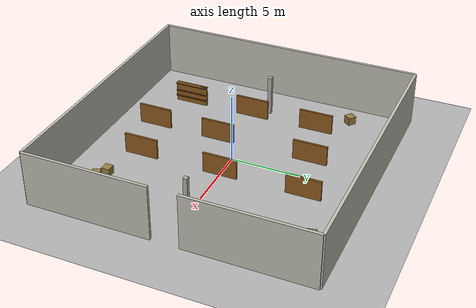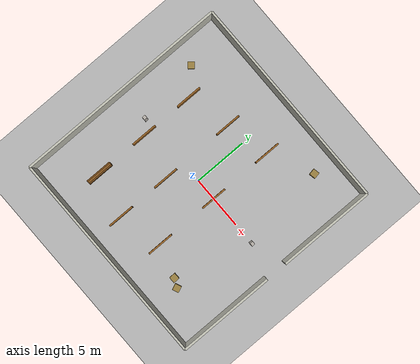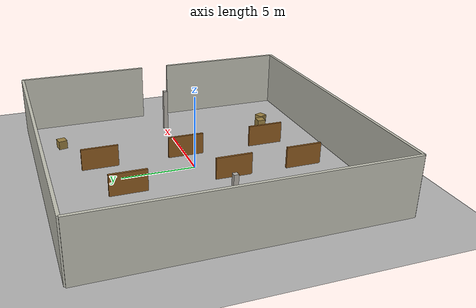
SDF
<?xml version="1.0" ?>
<sdf version="1.9">
<world name="warehouse">

  <physics name="1ms" type="ignored">
    <max_step_size>0.001</max_step_size>
    <real_time_factor>1.0</real_time_factor>
  </physics>

  <plugin filename="gz-sim-physics-system"
    name="gz::sim::systems::Physics"/>
  <plugin filename="gz-sim-user-commands-system"
    name="gz::sim::systems::UserCommands"/>
  <plugin filename="gz-sim-scene-broadcaster-system"
    name="gz::sim::systems::SceneBroadcaster"/>
  <plugin filename="gz-sim-contact-system"
    name="gz::sim::systems::Contact"/>
  <plugin filename="gz-sim-sensors-system"
    name="gz::sim::systems::Sensors">
    <render_engine>ogre2</render_engine>
  </plugin>

  <!-- ===== LIGHTING ===== -->
  <!-- Main overhead sun (no roof, so directional light works well) -->
  <light name="sun" type="directional">
    <cast_shadows>true</cast_shadows>
    <pose>0 0 20 0 0 0</pose>
    <diffuse>0.9 0.9 0.9 1</diffuse>
    <specular>0.3 0.3 0.3 1</specular>
    <direction>-0.3 0.1 -0.9</direction>
    <attenuation>
      <range>1000</range>
      <constant>0.9</constant>
      <linear>0.01</linear>
      <quadratic>0.001</quadratic>
    </attenuation>
  </light>

  <!-- Fill light to reduce harsh shadows -->
  <light name="fill_light" type="directional">
    <cast_shadows>false</cast_shadows>
    <pose>0 0 10 0 0 0</pose>
    <diffuse>0.4 0.4 0.5 1</diffuse>
    <specular>0.1 0.1 0.1 1</specular>
    <direction>0.5 -0.2 -0.8</direction>
  </light>

  <!-- ===== GROUND PLANE ===== -->
  <model name="ground_plane">
    <static>true</static>
    <link name="link">
      <collision name="collision">
        <geometry>
          <plane>
            <normal>0 0 1</normal>
            <size>100 100</size>
          </plane>
        </geometry>
        <surface>
          <friction>
            <ode><mu>1</mu><mu2>1</mu2></ode>
          </friction>
        </surface>
      </collision>
      <visual name="visual">
        <geometry>
          <plane>
            <normal>0 0 1</normal>
            <size>100 100</size>
          </plane>
        </geometry>
        <material>
          <ambient>0.6 0.6 0.6 1</ambient>
          <diffuse>0.7 0.7 0.7 1</diffuse>
          <specular>0.1 0.1 0.1 1</specular>
        </material>
      </visual>
    </link>
  </model>

  <!-- ===== WAREHOUSE WALLS (no roof) ===== -->
  <!-- South wall -->
  <model name="wall_south">
    <static>true</static>
    <pose>0 -10 2.0 0 0 0</pose>
    <link name="link">
      <collision name="collision">
        <geometry><box><size>20.0 0.2 4.0</size></box></geometry>
      </collision>
      <visual name="visual">
        <geometry><box><size>20.0 0.2 4.0</size></box></geometry>
        <material>
          <ambient>0.7 0.7 0.65 1</ambient>
          <diffuse>0.75 0.75 0.70 1</diffuse>
        </material>
      </visual>
    </link>
  </model>

  <!-- North wall -->
  <model name="wall_north">
    <static>true</static>
    <pose>0 10 2.0 0 0 0</pose>
    <link name="link">
      <collision name="collision">
        <geometry><box><size>20.0 0.2 4.0</size></box></geometry>
      </collision>
      <visual name="visual">
        <geometry><box><size>20.0 0.2 4.0</size></box></geometry>
        <material>
          <ambient>0.7 0.7 0.65 1</ambient>
          <diffuse>0.75 0.75 0.70 1</diffuse>
        </material>
      </visual>
    </link>
  </model>

  <!-- West wall -->
  <model name="wall_west">
    <static>true</static>
    <pose>-10 0 2.0 0 0 0</pose>
    <link name="link">
      <collision name="collision">
        <geometry><box><size>0.2 20.0 4.0</size></box></geometry>
      </collision>
      <visual name="visual">
        <geometry><box><size>0.2 20.0 4.0</size></box></geometry>
        <material>
          <ambient>0.7 0.7 0.65 1</ambient>
          <diffuse>0.75 0.75 0.70 1</diffuse>
        </material>
      </visual>
    </link>
  </model>

  <!-- East wall (split for a doorway gap at y=0, width 2m) -->
  <model name="wall_east_north">
    <static>true</static>
    <pose>10 5.5 2.0 0 0 0</pose>
    <link name="link">
      <collision name="collision">
        <geometry><box><size>0.2 9.0 4.0</size></box></geometry>
      </collision>
      <visual name="visual">
        <geometry><box><size>0.2 9.0 4.0</size></box></geometry>
        <material>
          <ambient>0.7 0.7 0.65 1</ambient>
          <diffuse>0.75 0.75 0.70 1</diffuse>
        </material>
      </visual>
    </link>
  </model>

  <model name="wall_east_south">
    <static>true</static>
    <pose>10 -5.5 2.0 0 0 0</pose>
    <link name="link">
      <collision name="collision">
        <geometry><box><size>0.2 9.0 4.0</size></box></geometry>
      </collision>
      <visual name="visual">
        <geometry><box><size>0.2 9.0 4.0</size></box></geometry>
        <material>
          <ambient>0.7 0.7 0.65 1</ambient>
          <diffuse>0.75 0.75 0.70 1</diffuse>
        </material>
      </visual>
    </link>
  </model>

  <!-- ===== SHELVING ROWS (3 rows, each with 3 units) ===== -->
  <!-- Row A — x = -6 -->
  <model name="shelf_A1">
    <static>true</static>
    <pose>-6 -6 0.75 0 0 0</pose>
    <link name="link">
      <collision name="collision">
        <geometry><box><size>0.15 2.5 1.5</size></box></geometry>
      </collision>
      <visual name="visual">
        <geometry><box><size>0.15 2.5 1.5</size></box></geometry>
        <material><ambient>0.45 0.28 0.08 1</ambient><diffuse>0.55 0.35 0.12 1</diffuse></material>
      </visual>
    </link>
  </model>

  <model name="shelf_A2">
    <static>true</static>
    <pose>-6 -1 0.75 0 0 0</pose>
    <link name="link">
      <collision name="collision">
        <geometry><box><size>0.15 2.5 1.5</size></box></geometry>
      </collision>
      <visual name="visual">
        <geometry><box><size>0.15 2.5 1.5</size></box></geometry>
        <material><ambient>0.45 0.28 0.08 1</ambient><diffuse>0.55 0.35 0.12 1</diffuse></material>
      </visual>
    </link>
  </model>

  <model name="shelf_A3">
    <static>true</static>
    <pose>-6 4 0.75 0 0 0</pose>
    <link name="link">
      <collision name="collision">
        <geometry><box><size>0.15 2.5 1.5</size></box></geometry>
      </collision>
      <visual name="visual">
        <geometry><box><size>0.15 2.5 1.5</size></box></geometry>
        <material><ambient>0.45 0.28 0.08 1</ambient><diffuse>0.55 0.35 0.12 1</diffuse></material>
      </visual>
    </link>
  </model>

  <!-- Row B — x = -2 -->
  <model name="shelf_B1">
    <static>true</static>
    <pose>-2 -7 0.75 0 0 0</pose>
    <link name="link">
      <collision name="collision">
        <geometry><box><size>0.15 2.5 1.5</size></box></geometry>
      </collision>
      <visual name="visual">
        <geometry><box><size>0.15 2.5 1.5</size></box></geometry>
        <material><ambient>0.45 0.28 0.08 1</ambient><diffuse>0.55 0.35 0.12 1</diffuse></material>
      </visual>
    </link>
  </model>

  <model name="shelf_B2">
    <static>true</static>
    <pose>-2 -2 0.75 0 0 0</pose>
    <link name="link">
      <collision name="collision">
        <geometry><box><size>0.15 2.5 1.5</size></box></geometry>
      </collision>
      <visual name="visual">
        <geometry><box><size>0.15 2.5 1.5</size></box></geometry>
        <material><ambient>0.45 0.28 0.08 1</ambient><diffuse>0.55 0.35 0.12 1</diffuse></material>
      </visual>
    </link>
  </model>

  <model name="shelf_B3">
    <static>true</static>
    <pose>-2 5 0.75 0 0 0</pose>
    <link name="link">
      <collision name="collision">
        <geometry><box><size>0.15 2.5 1.5</size></box></geometry>
      </collision>
      <visual name="visual">
        <geometry><box><size>0.15 2.5 1.5</size></box></geometry>
        <material><ambient>0.45 0.28 0.08 1</ambient><diffuse>0.55 0.35 0.12 1</diffuse></material>
      </visual>
    </link>
  </model>

  <!-- Row C — x = 2 -->
  <model name="shelf_C1">
    <static>true</static>
    <pose>2 -6 0.75 0 0 0</pose>
    <link name="link">
      <collision name="collision">
        <geometry><box><size>0.15 2.5 1.5</size></box></geometry>
      </collision>
      <visual name="visual">
        <geometry><box><size>0.15 2.5 1.5</size></box></geometry>
        <material><ambient>0.45 0.28 0.08 1</ambient><diffuse>0.55 0.35 0.12 1</diffuse></material>
      </visual>
    </link>
  </model>

  <model name="shelf_C2">
    <static>true</static>
    <pose>2 0 0.75 0 0 0</pose>
    <link name="link">
      <collision name="collision">
        <geometry><box><size>0.15 2.5 1.5</size></box></geometry>
      </collision>
      <visual name="visual">
        <geometry><box><size>0.15 2.5 1.5</size></box></geometry>
        <material><ambient>0.45 0.28 0.08 1</ambient><diffuse>0.55 0.35 0.12 1</diffuse></material>
      </visual>
    </link>
  </model>

  <model name="shelf_C3">
    <static>true</static>
    <pose>2 6 0.75 0 0 0</pose>
    <link name="link">
      <collision name="collision">
        <geometry><box><size>0.15 2.5 1.5</size></box></geometry>
      </collision>
      <visual name="visual">
        <geometry><box><size>0.15 2.5 1.5</size></box></geometry>
        <material><ambient>0.45 0.28 0.08 1</ambient><diffuse>0.55 0.35 0.12 1</diffuse></material>
      </visual>
    </link>
  </model>

  <!-- ===== STANDALONE OBSTACLES (boxes/crates on the floor) ===== -->
  <!-- Scattered crates to add variety for mapping -->
  <model name="crate_1">
    <static>true</static>
    <pose>5 -7 0.3 0 0 0</pose>
    <link name="link">
      <collision name="collision">
        <geometry><box><size>0.6 0.6 0.6</size></box></geometry>
      </collision>
      <visual name="visual">
        <geometry><box><size>0.6 0.6 0.6</size></box></geometry>
        <material><ambient>0.5 0.4 0.2 1</ambient><diffuse>0.6 0.5 0.25 1</diffuse></material>
      </visual>
    </link>
  </model>

  <model name="crate_2">
    <static>true</static>
    <pose>5.8 -7.4 0.3 0 0 0.4</pose>
    <link name="link">
      <collision name="collision">
        <geometry><box><size>0.6 0.6 0.6</size></box></geometry>
      </collision>
      <visual name="visual">
        <geometry><box><size>0.6 0.6 0.6</size></box></geometry>
        <material><ambient>0.5 0.4 0.2 1</ambient><diffuse>0.6 0.5 0.25 1</diffuse></material>
      </visual>
    </link>
  </model>

  <model name="crate_3">
    <static>true</static>
    <pose>6 8 0.3 0 0 0.2</pose>
    <link name="link">
      <collision name="collision">
        <geometry><box><size>0.6 0.6 0.6</size></box></geometry>
      </collision>
      <visual name="visual">
        <geometry><box><size>0.6 0.6 0.6</size></box></geometry>
        <material><ambient>0.5 0.4 0.2 1</ambient><diffuse>0.6 0.5 0.25 1</diffuse></material>
      </visual>
    </link>
  </model>

  <model name="crate_4">
    <static>true</static>
    <pose>-8 6 0.3 0 0 0.9</pose>
    <link name="link">
      <collision name="collision">
        <geometry><box><size>0.6 0.6 0.6</size></box></geometry>
      </collision>
      <visual name="visual">
        <geometry><box><size>0.6 0.6 0.6</size></box></geometry>
        <material><ambient>0.5 0.4 0.2 1</ambient><diffuse>0.6 0.5 0.25 1</diffuse></material>
      </visual>
    </link>
  </model>

  <!-- A taller pillar/column for structural interest -->
  <model name="pillar_1">
    <static>true</static>
    <pose>-7 0 1.5 0 0 0</pose>
    <link name="link">
      <collision name="collision">
        <geometry><box><size>0.3 0.3 3.0</size></box></geometry>
      </collision>
      <visual name="visual">
        <geometry><box><size>0.3 0.3 3.0</size></box></geometry>
        <material><ambient>0.65 0.63 0.60 1</ambient><diffuse>0.70 0.68 0.65 1</diffuse></material>
      </visual>
    </link>
  </model>

  <model name="pillar_2">
    <static>true</static>
    <pose>7 0 1.5 0 0 0</pose>
    <link name="link">
      <collision name="collision">
        <geometry><box><size>0.3 0.3 3.0</size></box></geometry>
      </collision>
      <visual name="visual">
        <geometry><box><size>0.3 0.3 3.0</size></box></geometry>
        <material><ambient>0.65 0.63 0.60 1</ambient><diffuse>0.70 0.68 0.65 1</diffuse></material>
      </visual>
    </link>
  </model>

  <!-- ===== HORIZONTAL SHELF BOARDS (visual detail on shelf units) ===== -->
  <!-- Shelf A1 boards at 3 heights -->
  <model name="board_A1_low">
    <static>true</static>
    <pose>-6 -6 0.45 0 0 0</pose>
    <link name="link">
      <collision name="collision">
        <geometry><box><size>0.4 2.5 0.04</size></box></geometry>
      </collision>
      <visual name="visual">
        <geometry><box><size>0.4 2.5 0.04</size></box></geometry>
        <material><ambient>0.38 0.22 0.06 1</ambient><diffuse>0.42 0.26 0.08 1</diffuse></material>
      </visual>
    </link>
  </model>

  <model name="board_A1_mid">
    <static>true</static>
    <pose>-6 -6 0.90 0 0 0</pose>
    <link name="link">
      <collision name="collision">
        <geometry><box><size>0.4 2.5 0.04</size></box></geometry>
      </collision>
      <visual name="visual">
        <geometry><box><size>0.4 2.5 0.04</size></box></geometry>
        <material><ambient>0.38 0.22 0.06 1</ambient><diffuse>0.42 0.26 0.08 1</diffuse></material>
      </visual>
    </link>
  </model>

  <model name="board_A1_top">
    <static>true</static>
    <pose>-6 -6 1.48 0 0 0</pose>
    <link name="link">
      <collision name="collision">
        <geometry><box><size>0.4 2.5 0.04</size></box></geometry>
      </collision>
      <visual name="visual">
        <geometry><box><size>0.4 2.5 0.04</size></box></geometry>
        <material><ambient>0.38 0.22 0.06 1</ambient><diffuse>0.42 0.26 0.08 1</diffuse></material>
      </visual>
    </link>
  </model>

</world>
</sdf>
